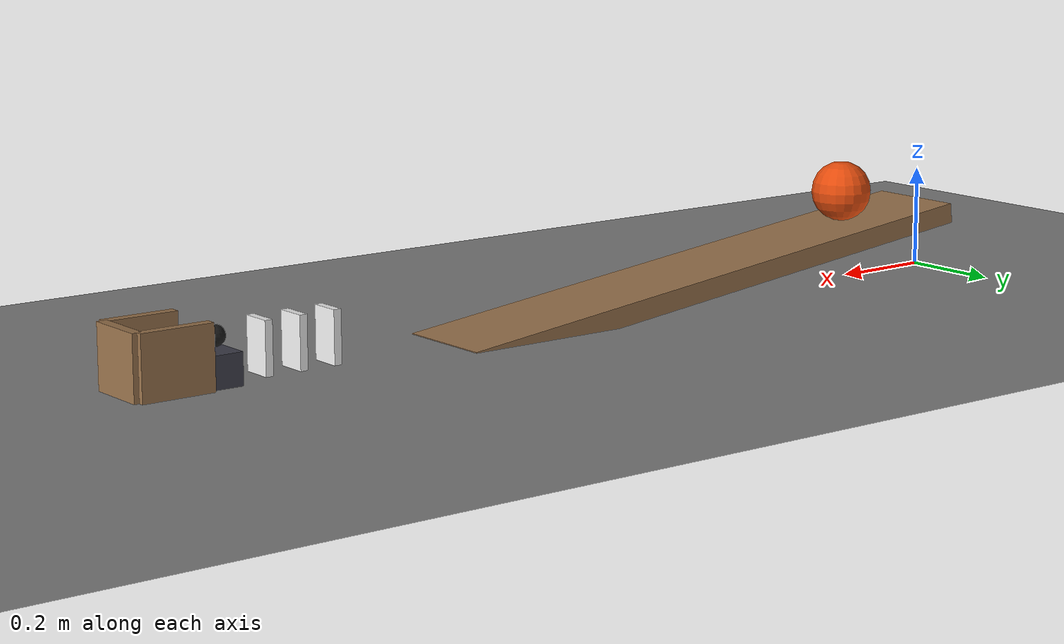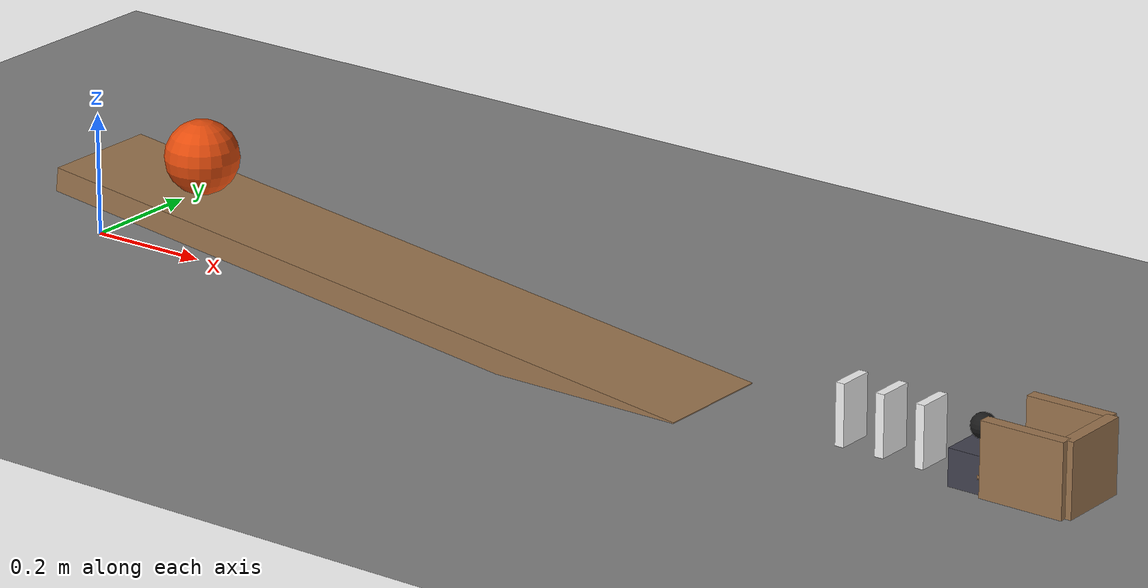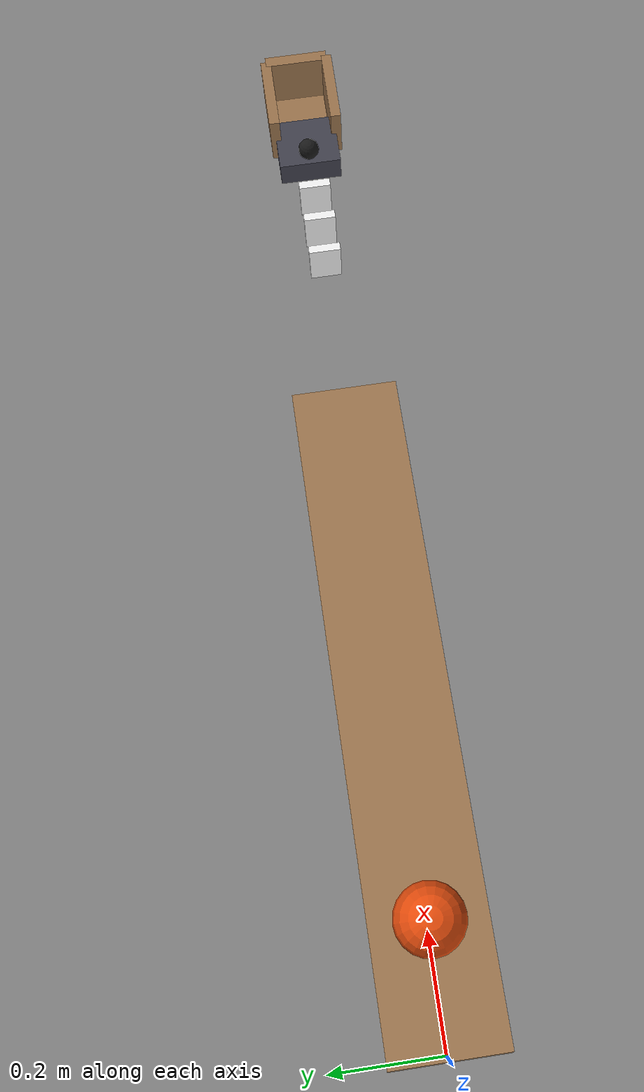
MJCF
<mujoco model="ramp_ball_domino_chain_into_cup">
  <compiler angle="radian"/>
  <option timestep="0.002"/>
  <worldbody>
    <geom name="floor" type="plane" size="6 6 0.1" friction="0.8 0.005 0.002"/>
    <body name="ramp">
      <geom name="ramp" type="box" pos="0.6 0 0.05" size="0.60407 0.1 0.02" euler="0 0.116142 0" friction="0.8 0.005 0.002" rgba="0.6 0.45 0.3 1"/>
    </body>
    <body name="ball1" pos="0.215869 0 0.175358">
      <freejoint/>
      <geom name="ball1" type="sphere" pos="0 0 0" size="0.06" mass="0.08" condim="6" friction="0.8 0.005 0.002" rgba="0.9 0.3 0.05 1"/>
    </body>
    <body name="d1" pos="1.45 0 0.05">
      <freejoint/>
      <geom name="d1" type="box" pos="0 0 0" size="0.0075 0.03 0.05" mass="0.05" friction="0.4 0.005 0.0001" rgba="0.95 0.95 0.95 1"/>
    </body>
    <body name="d2" pos="1.52 0 0.05">
      <freejoint/>
      <geom name="d2" type="box" pos="0 0 0" size="0.0075 0.03 0.05" mass="0.05" friction="0.4 0.005 0.0001" rgba="0.95 0.95 0.95 1"/>
    </body>
    <body name="d3" pos="1.59 0 0.05">
      <freejoint/>
      <geom name="d3" type="box" pos="0 0 0" size="0.0075 0.03 0.05" mass="0.05" friction="0.4 0.005 0.0001" rgba="0.95 0.95 0.95 1"/>
    </body>
    <body name="shelf">
      <geom name="shelf" type="box" pos="1.71 0 0.03" size="0.05 0.06 0.03" friction="0.8 0.001 0.0001" rgba="0.25 0.25 0.3 1"/>
    </body>
    <body name="ball2" pos="1.68 0 0.08">
      <freejoint/>
      <geom name="ball2" type="sphere" pos="0 0 0" size="0.02" mass="0.015" condim="6" friction="0.4 0.001 0.0001" rgba="0.1 0.1 0.1 1"/>
    </body>
    <body name="cup">
      <geom name="cup_base" type="box" pos="1.79 0 0.0025" size="0.07 0.06 0.0025" friction="0.8 0.005 0.002" solref="0.01 1" rgba="0.6 0.45 0.3 1"/>
      <geom name="cup_near_wall" type="box" pos="1.72 0 0.015" size="0.01 0.06 0.015" friction="0.8 0.005 0.002" solref="0.01 1" rgba="0.6 0.45 0.3 1"/>
      <geom name="cup_far_wall" type="box" pos="1.86 0 0.06" size="0.01 0.06 0.06" friction="0.8 0.005 0.002" solref="0.01 1" rgba="0.6 0.45 0.3 1"/>
      <geom name="cup_left_wall" type="box" pos="1.79 0.06 0.06" size="0.07 0.01 0.06" friction="0.8 0.005 0.002" solref="0.01 1" rgba="0.6 0.45 0.3 1"/>
      <geom name="cup_right_wall" type="box" pos="1.79 -0.06 0.06" size="0.07 0.01 0.06" friction="0.8 0.005 0.002" solref="0.01 1" rgba="0.6 0.45 0.3 1"/>
    </body>
  </worldbody>
  <keyframe>
    <key name="start" qpos="0.215869 0 0.175358 1 0 0 0 1.45 0 0.05 1 0 0 0 1.52 0 0.05 1 0 0 0 1.59 0 0.05 1 0 0 0 1.68 0 0.08 1 0 0 0" qvel="0 0 0 0 0 0 0 0 0 0 0 0 0 0 0 0 0 0 0 0 0 0 0 0 0 0 0 0 0 0"/>
  </keyframe>
</mujoco>
